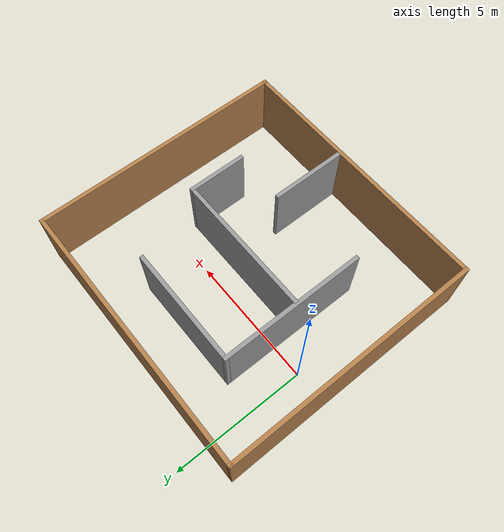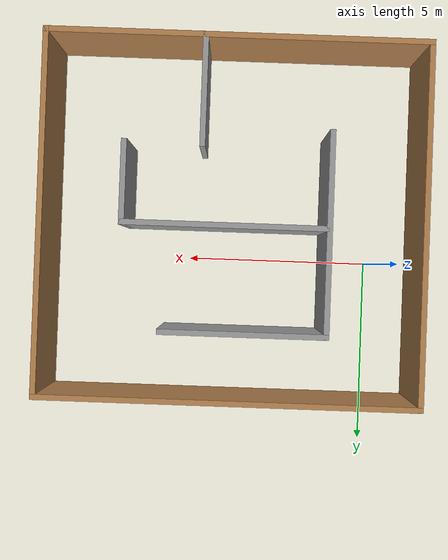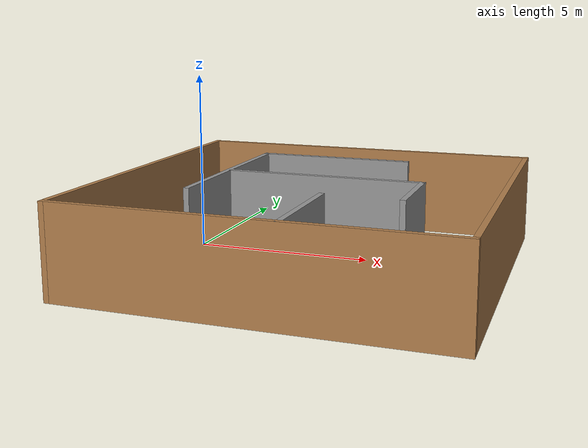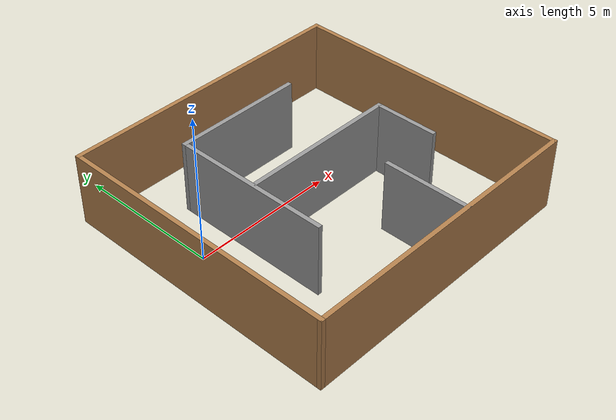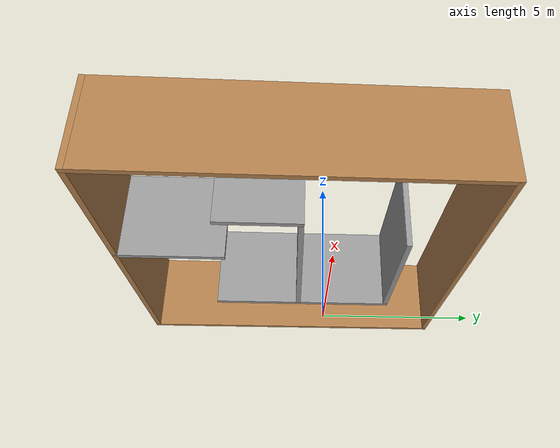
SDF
<?xml version='1.0'?>
<sdf version='1.7'>
  <model name='indoor'>
    <pose>3.80687 -1.03904 0 0 -0 0</pose>
    <link name='Wall_11'>
      <collision name='Wall_11_Collision'>
        <geometry>
          <box>
            <size>9.75 0.15 2.5</size>
          </box>
        </geometry>
        <pose>0 0 1.25 0 -0 0</pose>
      </collision>
      <visual name='Wall_11_Visual'>
        <pose>0 0 1.25 0 -0 0</pose>
        <geometry>
          <box>
            <size>9.75 0.15 2.5</size>
          </box>
        </geometry>
        <material>
          <script>
            <uri>file://media/materials/scripts/gazebo.material</uri>
            <name>Gazebo/Wood</name>
          </script>
          <ambient>1 1 1 1</ambient>
        </material>
        <meta>
          <layer>0</layer>
        </meta>
      </visual>
      <pose>-5.05 0 0 0 -0 1.5708</pose>
    </link>
    <link name='Wall_12'>
      <collision name='Wall_12_Collision'>
        <geometry>
          <box>
            <size>10.25 0.15 2.5</size>
          </box>
        </geometry>
        <pose>0 0 1.25 0 -0 0</pose>
      </collision>
      <visual name='Wall_12_Visual'>
        <pose>0 0 1.25 0 -0 0</pose>
        <geometry>
          <box>
            <size>10.25 0.15 2.5</size>
          </box>
        </geometry>
        <material>
          <script>
            <uri>file://media/materials/scripts/gazebo.material</uri>
            <name>Gazebo/Wood</name>
          </script>
          <ambient>1 1 1 1</ambient>
        </material>
        <meta>
          <layer>0</layer>
        </meta>
      </visual>
      <pose>0 4.8 0 0 -0 0</pose>
    </link>
    <link name='Wall_13'>
      <collision name='Wall_13_Collision'>
        <geometry>
          <box>
            <size>9.75 0.15 2.5</size>
          </box>
        </geometry>
        <pose>0 0 1.25 0 -0 0</pose>
      </collision>
      <visual name='Wall_13_Visual'>
        <pose>0 0 1.25 0 -0 0</pose>
        <geometry>
          <box>
            <size>9.75 0.15 2.5</size>
          </box>
        </geometry>
        <material>
          <script>
            <uri>file://media/materials/scripts/gazebo.material</uri>
            <name>Gazebo/Wood</name>
          </script>
          <ambient>1 1 1 1</ambient>
        </material>
        <meta>
          <layer>0</layer>
        </meta>
      </visual>
      <pose>5.05 0 0 0 -0 -1.5708</pose>
    </link>
    <link name='Wall_14'>
      <collision name='Wall_14_Collision'>
        <geometry>
          <box>
            <size>10.25 0.15 2.5</size>
          </box>
        </geometry>
        <pose>0 0 1.25 0 -0 0</pose>
      </collision>
      <visual name='Wall_14_Visual'>
        <pose>0 0 1.25 0 -0 0</pose>
        <geometry>
          <box>
            <size>10.25 0.15 2.5</size>
          </box>
        </geometry>
        <material>
          <script>
            <uri>file://media/materials/scripts/gazebo.material</uri>
            <name>Gazebo/Wood</name>
          </script>
          <ambient>1 1 1 1</ambient>
        </material>
        <meta>
          <layer>0</layer>
        </meta>
      </visual>
      <pose>0 -4.8 0 0 -0 3.14159</pose>
    </link>
    <link name='Wall_16'>
      <collision name='Wall_16_Collision'>
        <geometry>
          <box>
            <size>5.5 0.15 2.5</size>
          </box>
        </geometry>
        <pose>0 0 1.25 0 -0 0</pose>
      </collision>
      <visual name='Wall_16_Visual'>
        <pose>0 0 1.25 0 -0 0</pose>
        <geometry>
          <box>
            <size>5.5 0.15 2.5</size>
          </box>
        </geometry>
        <material>
          <script>
            <uri>file://media/materials/scripts/gazebo.material</uri>
            <name>Gazebo/Grey</name>
          </script>
          <ambient>1 1 1 1</ambient>
        </material>
        <meta>
          <layer>0</layer>
        </meta>
      </visual>
      <pose>-2.53114 0.319143 0 0 -0 -1.5708</pose>
    </link>
    <link name='Wall_18'>
      <collision name='Wall_18_Collision'>
        <geometry>
          <box>
            <size>5.5 0.15 2.5</size>
          </box>
        </geometry>
        <pose>0 0 1.25 0 -0 0</pose>
      </collision>
      <visual name='Wall_18_Visual'>
        <pose>0 0 1.25 0 -0 0</pose>
        <geometry>
          <box>
            <size>5.5 0.15 2.5</size>
          </box>
        </geometry>
        <material>
          <script>
            <uri>file://media/materials/scripts/gazebo.material</uri>
            <name>Gazebo/Grey</name>
          </script>
          <ambient>1 1 1 1</ambient>
        </material>
        <meta>
          <layer>0</layer>
        </meta>
      </visual>
      <pose>0.236436 0.163993 0 0 -0 0</pose>
    </link>
    <link name='Wall_21'>
      <collision name='Wall_21_Collision'>
        <geometry>
          <box>
            <size>3 0.15 2.5</size>
          </box>
        </geometry>
        <pose>0 0 1.25 0 -0 0</pose>
      </collision>
      <visual name='Wall_21_Visual'>
        <pose>0 0 1.25 0 -0 0</pose>
        <geometry>
          <box>
            <size>3 0.15 2.5</size>
          </box>
        </geometry>
        <material>
          <script>
            <uri>file://media/materials/scripts/gazebo.material</uri>
            <name>Gazebo/Grey</name>
          </script>
          <ambient>1 1 1 1</ambient>
        </material>
        <meta>
          <layer>0</layer>
        </meta>
      </visual>
      <pose>0.867686 -3.37038 0 0 -0 1.5708</pose>
    </link>
    <link name='Wall_25'>
      <collision name='Wall_25_Collision'>
        <geometry>
          <box>
            <size>2.25 0.15 2.5</size>
          </box>
        </geometry>
        <pose>0 0 1.25 0 -0 0</pose>
      </collision>
      <visual name='Wall_25_Visual'>
        <pose>0 0 1.25 0 -0 0</pose>
        <geometry>
          <box>
            <size>2.25 0.15 2.5</size>
          </box>
        </geometry>
        <material>
          <script>
            <uri>file://media/materials/scripts/gazebo.material</uri>
            <name>Gazebo/Grey</name>
          </script>
          <ambient>1 1 1 1</ambient>
        </material>
        <meta>
          <layer>0</layer>
        </meta>
      </visual>
      <pose>2.91144 -0.886007 0 0 -0 -1.5708</pose>
    </link>
    <link name='Wall_27'>
      <collision name='Wall_27_Collision'>
        <geometry>
          <box>
            <size>4.5 0.15 2.5</size>
          </box>
        </geometry>
        <pose>0 0 1.25 0 -0 0</pose>
      </collision>
      <visual name='Wall_27_Visual'>
        <pose>0 0 1.25 0 -0 0</pose>
        <geometry>
          <box>
            <size>4.5 0.15 2.5</size>
          </box>
        </geometry>
        <material>
          <script>
            <uri>file://media/materials/scripts/gazebo.material</uri>
            <name>Gazebo/Grey</name>
          </script>
          <ambient>1 1 1 1</ambient>
        </material>
        <meta>
          <layer>0</layer>
        </meta>
      </visual>
      <pose>-0.356139 2.99414 0 0 -0 0</pose>
    </link>
    <static>1</static>
  </model>
</sdf>
